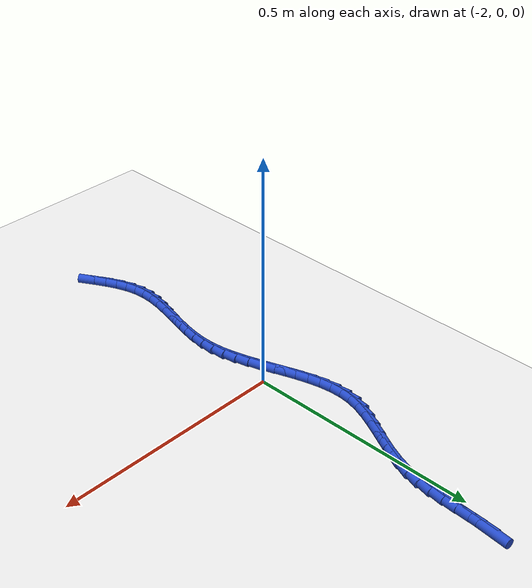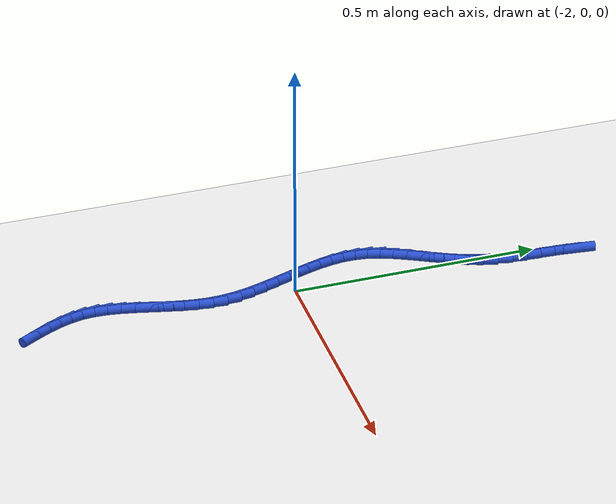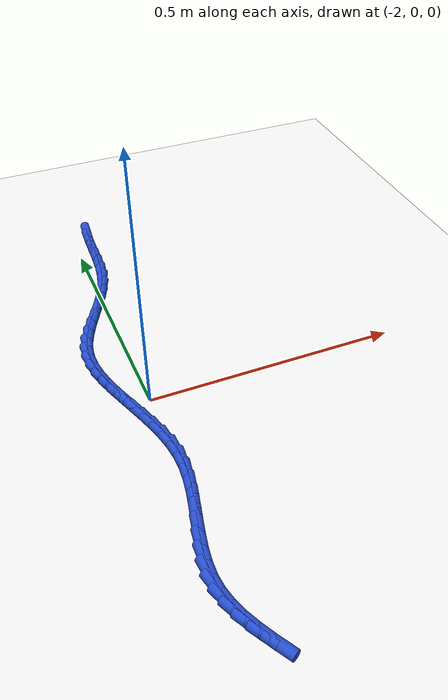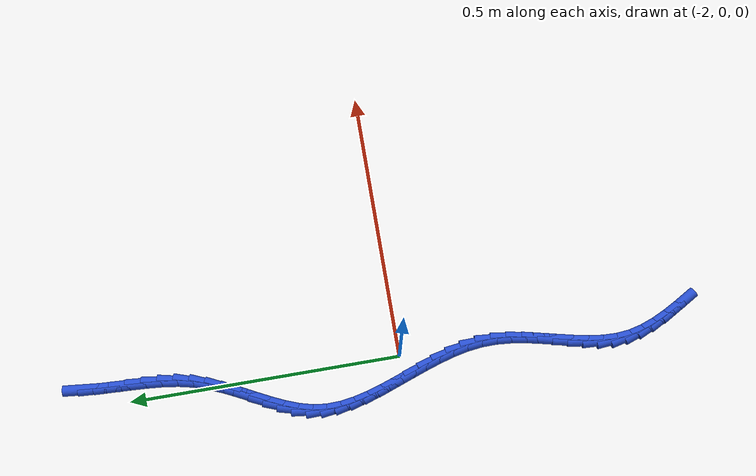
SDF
<sdf version="1.6">
 <world name="default">
  <model name="ground_plane">
   <static>1</static>
   <link name="link">
    <collision name="collision">
     <geometry><plane><normal>0 0 1</normal><size>100 100</size></plane></geometry>
     <surface><friction><ode><mu>100</mu><mu2>50</mu2></ode></friction></surface>
    </collision>
    <visual name="visual">
     <cast_shadows>0</cast_shadows>
     <geometry><plane><normal>0 0 1</normal><size>100 100</size></plane></geometry>
     <material>
      <script><uri>file://media/materials/scripts/gazebo.material</uri><name>Gazebo/WhiteGlow</name></script>
     </material>
    </visual>
   </link>
  </model>
  <model name="line">
   <link name="link_104">
    <pose>-1.9638460300956704 0.5771195783553625 0.01 0 1.57 1.4712938510846374</pose>
    <collision name="collision">
     <geometry><cylinder><radius>0.01</radius><length>0.08</length></cylinder></geometry>
    </collision>
    <visual name="visual">
     <material>
      <script><name>Gazebo/Blue</name><uri>file://media/materials/scripts/gazebo.material</uri></script>
     </material>
     <geometry><cylinder><radius>0.01</radius><length>0.08</length></cylinder></geometry>
    </visual>
   </link>
   <link name="link_105">
    <pose>-1.966580474179324 0.5497291666127777 0.01 0 1.57 1.511158272369347</pose>
    <collision name="collision">
     <geometry><cylinder><radius>0.01</radius><length>0.08</length></cylinder></geometry>
    </collision>
    <visual name="visual">
     <material>
      <script><name>Gazebo/Blue</name><uri>file://media/materials/scripts/gazebo.material</uri></script>
     </material>
     <geometry><cylinder><radius>0.01</radius><length>0.08</length></cylinder></geometry>
    </visual>
   </link>
   <link name="link_106">
    <pose>-1.9682664307233695 0.5214928789996873 0.01 0 1.57 1.5256882236570488</pose>
    <collision name="collision">
     <geometry><cylinder><radius>0.01</radius><length>0.08</length></cylinder></geometry>
    </collision>
    <visual name="visual">
     <material>
      <script><name>Gazebo/Blue</name><uri>file://media/materials/scripts/gazebo.material</uri></script>
     </material>
     <geometry><cylinder><radius>0.01</radius><length>0.08</length></cylinder></geometry>
    </visual>
   </link>
   <link name="link_107">
    <pose>-1.9695661513405653 0.49269896226086146 0.01 0 1.57 1.516631965013393</pose>
    <collision name="collision">
     <geometry><cylinder><radius>0.01</radius><length>0.08</length></cylinder></geometry>
    </collision>
    <visual name="visual">
     <material>
      <script><name>Gazebo/Blue</name><uri>file://media/materials/scripts/gazebo.material</uri></script>
     </material>
     <geometry><cylinder><radius>0.01</radius><length>0.08</length></cylinder></geometry>
    </visual>
   </link>
   <link name="link_108">
    <pose>-1.9711418876436715 0.46363566314106996 0.01 0 1.57 1.4844543727182367</pose>
    <collision name="collision">
     <geometry><cylinder><radius>0.01</radius><length>0.08</length></cylinder></geometry>
    </collision>
    <visual name="visual">
     <material>
      <script><name>Gazebo/Blue</name><uri>file://media/materials/scripts/gazebo.material</uri></script>
     </material>
     <geometry><cylinder><radius>0.01</radius><length>0.08</length></cylinder></geometry>
    </visual>
   </link>
   <link name="link_109">
    <pose>-1.973655891245446 0.43459122838508196 0.01 0 1.57 1.428585869701729</pose>
    <collision name="collision">
     <geometry><cylinder><radius>0.01</radius><length>0.08</length></cylinder></geometry>
    </collision>
    <visual name="visual">
     <material>
      <script><name>Gazebo/Blue</name><uri>file://media/materials/scripts/gazebo.material</uri></script>
     </material>
     <geometry><cylinder><radius>0.01</radius><length>0.08</length></cylinder></geometry>
    </visual>
   </link>
   <link name="link_110">
    <pose>-1.9777704137586498 0.4058539047376674 0.01 0 1.57 1.347948567414712</pose>
    <collision name="collision">
     <geometry><cylinder><radius>0.01</radius><length>0.08</length></cylinder></geometry>
    </collision>
    <visual name="visual">
     <material>
      <script><name>Gazebo/Blue</name><uri>file://media/materials/scripts/gazebo.material</uri></script>
     </material>
     <geometry><cylinder><radius>0.01</radius><length>0.08</length></cylinder></geometry>
    </visual>
   </link>
   <link name="link_111">
    <pose>-1.9841477067960416 0.377711938943596 0.01 0 1.57 1.2496712626826476</pose>
    <collision name="collision">
     <geometry><cylinder><radius>0.01</radius><length>0.08</length></cylinder></geometry>
    </collision>
    <visual name="visual">
     <material>
      <script><name>Gazebo/Blue</name><uri>file://media/materials/scripts/gazebo.material</uri></script>
     </material>
     <geometry><cylinder><radius>0.01</radius><length>0.08</length></cylinder></geometry>
    </visual>
   </link>
   <link name="link_112">
    <pose>-1.9932357253336646 0.3503909317823827 0.01 0 1.57 1.1701840110356312</pose>
    <collision name="collision">
     <geometry><cylinder><radius>0.01</radius><length>0.08</length></cylinder></geometry>
    </collision>
    <visual name="visual">
     <material>
      <script><name>Gazebo/Blue</name><uri>file://media/materials/scripts/gazebo.material</uri></script>
     </material>
     <geometry><cylinder><radius>0.01</radius><length>0.08</length></cylinder></geometry>
    </visual>
   </link>
   <link name="link_113">
    <pose>-2.0044866383874935 0.32382538299896113 0.01 0 1.57 1.1196474229728728</pose>
    <collision name="collision">
     <geometry><cylinder><radius>0.01</radius><length>0.08</length></cylinder></geometry>
    </collision>
    <visual name="visual">
     <material>
      <script><name>Gazebo/Blue</name><uri>file://media/materials/scripts/gazebo.material</uri></script>
     </material>
     <geometry><cylinder><radius>0.01</radius><length>0.08</length></cylinder></geometry>
    </visual>
   </link>
   <link name="link_114">
    <pose>-2.0170635928455916 0.2978653016506812 0.01 0 1.57 1.0973541623649388</pose>
    <collision name="collision">
     <geometry><cylinder><radius>0.01</radius><length>0.08</length></cylinder></geometry>
    </collision>
    <visual name="visual">
     <material>
      <script><name>Gazebo/Blue</name><uri>file://media/materials/scripts/gazebo.material</uri></script>
     </material>
     <geometry><cylinder><radius>0.01</radius><length>0.08</length></cylinder></geometry>
    </visual>
   </link>
   <link name="link_115">
    <pose>-2.0301297045751125 0.27236068772646027 0.01 0 1.57 1.1033839109279349</pose>
    <collision name="collision">
     <geometry><cylinder><radius>0.01</radius><length>0.08</length></cylinder></geometry>
    </collision>
    <visual name="visual">
     <material>
      <script><name>Gazebo/Blue</name><uri>file://media/materials/scripts/gazebo.material</uri></script>
     </material>
     <geometry><cylinder><radius>0.01</radius><length>0.08</length></cylinder></geometry>
    </visual>
   </link>
   <link name="link_116">
    <pose>-2.042848089443217 0.24716154121521614 0.01 0 1.57 1.139206784216069</pose>
    <collision name="collision">
     <geometry><cylinder><radius>0.01</radius><length>0.08</length></cylinder></geometry>
    </collision>
    <visual name="visual">
     <material>
      <script><name>Gazebo/Blue</name><uri>file://media/materials/scripts/gazebo.material</uri></script>
     </material>
     <geometry><cylinder><radius>0.01</radius><length>0.08</length></cylinder></geometry>
    </visual>
   </link>
   <link name="link_117">
    <pose>-2.054381863317059 0.22211786210586607 0.01 0 1.57 1.2077275535385854</pose>
    <collision name="collision">
     <geometry><cylinder><radius>0.01</radius><length>0.08</length></cylinder></geometry>
    </collision>
    <visual name="visual">
     <material>
      <script><name>Gazebo/Blue</name><uri>file://media/materials/scripts/gazebo.material</uri></script>
     </material>
     <geometry><cylinder><radius>0.01</radius><length>0.08</length></cylinder></geometry>
    </visual>
   </link>
   <link name="link_118">
    <pose>-2.063894142063797 0.19707965038732786 0.01 0 1.57 1.3124752953148382</pose>
    <collision name="collision">
     <geometry><cylinder><radius>0.01</radius><length>0.08</length></cylinder></geometry>
    </collision>
    <visual name="visual">
     <material>
      <script><name>Gazebo/Blue</name><uri>file://media/materials/scripts/gazebo.material</uri></script>
     </material>
     <geometry><cylinder><radius>0.01</radius><length>0.08</length></cylinder></geometry>
    </visual>
   </link>
   <link name="link_119">
    <pose>-2.070548041550588 0.17189690604851904 0.01 0 1.57 1.4531489398870898</pose>
    <collision name="collision">
     <geometry><cylinder><radius>0.01</radius><length>0.08</length></cylinder></geometry>
    </collision>
    <visual name="visual">
     <material>
      <script><name>Gazebo/Blue</name><uri>file://media/materials/scripts/gazebo.material</uri></script>
     </material>
     <geometry><cylinder><radius>0.01</radius><length>0.08</length></cylinder></geometry>
    </visual>
   </link>
   <link name="link_120">
    <pose>-2.0735585650393897 0.14642569691015217 0.01 0 1.57 -1.546108378441971</pose>
    <collision name="collision">
     <geometry><cylinder><radius>0.01</radius><length>0.08</length></cylinder></geometry>
    </collision>
    <visual name="visual">
     <material>
      <script><name>Gazebo/Blue</name><uri>file://media/materials/scripts/gazebo.material</uri></script>
     </material>
     <geometry><cylinder><radius>0.01</radius><length>0.08</length></cylinder></geometry>
    </visual>
   </link>
   <link name="link_121">
    <pose>-2.0729211819072044 0.12061336030310865 0.01 0 1.57 -1.4306521692753797</pose>
    <collision name="collision">
     <geometry><cylinder><radius>0.01</radius><length>0.08</length></cylinder></geometry>
    </collision>
    <visual name="visual">
     <material>
      <script><name>Gazebo/Blue</name><uri>file://media/materials/scripts/gazebo.material</uri></script>
     </material>
     <geometry><cylinder><radius>0.01</radius><length>0.08</length></cylinder></geometry>
    </visual>
   </link>
   <link name="link_122">
    <pose>-2.069234257889862 0.0944777376510083 0.01 0 1.57 -1.3432396800025814</pose>
    <collision name="collision">
     <geometry><cylinder><radius>0.01</radius><length>0.08</length></cylinder></geometry>
    </collision>
    <visual name="visual">
     <material>
      <script><name>Gazebo/Blue</name><uri>file://media/materials/scripts/gazebo.material</uri></script>
     </material>
     <geometry><cylinder><radius>0.01</radius><length>0.08</length></cylinder></geometry>
    </visual>
   </link>
   <link name="link_123">
    <pose>-2.0631117886306862 0.06803849817495393 0.01 0 1.57 -1.2818454118321496</pose>
    <collision name="collision">
     <geometry><cylinder><radius>0.01</radius><length>0.08</length></cylinder></geometry>
    </collision>
    <visual name="visual">
     <material>
      <script><name>Gazebo/Blue</name><uri>file://media/materials/scripts/gazebo.material</uri></script>
     </material>
     <geometry><cylinder><radius>0.01</radius><length>0.08</length></cylinder></geometry>
    </visual>
   </link>
   <link name="link_124">
    <pose>-2.0551677697729995 0.04131531109604834 0.01 0 1.57 -1.243860685171999</pose>
    <collision name="collision">
     <geometry><cylinder><radius>0.01</radius><length>0.08</length></cylinder></geometry>
    </collision>
    <visual name="visual">
     <material>
      <script><name>Gazebo/Blue</name><uri>file://media/materials/scripts/gazebo.material</uri></script>
     </material>
     <geometry><cylinder><radius>0.01</radius><length>0.08</length></cylinder></geometry>
    </visual>
   </link>
   <link name="link_125">
    <pose>-2.046016196960124 0.014327845635394331 0.01 0 1.57 -1.2271410408471115</pose>
    <collision name="collision">
     <geometry><cylinder><radius>0.01</radius><length>0.08</length></cylinder></geometry>
    </collision>
    <visual name="visual">
     <material>
      <script><name>Gazebo/Blue</name><uri>file://media/materials/scripts/gazebo.material</uri></script>
     </material>
     <geometry><cylinder><radius>0.01</radius><length>0.08</length></cylinder></geometry>
    </visual>
   </link>
   <link name="link_126">
    <pose>-2.036271065835383 -0.012904228985905427 0.01 0 1.57 -1.230403564304682</pose>
    <collision name="collision">
     <geometry><cylinder><radius>0.01</radius><length>0.08</length></cylinder></geometry>
    </collision>
    <visual name="visual">
     <material>
      <script><name>Gazebo/Blue</name><uri>file://media/materials/scripts/gazebo.material</uri></script>
     </material>
     <geometry><cylinder><radius>0.01</radius><length>0.08</length></cylinder></geometry>
    </visual>
   </link>
   <link name="link_127">
    <pose>-2.0265463720420995 -0.04036124354674803 0.01 0 1.57 -1.2532976482034097</pose>
    <collision name="collision">
     <geometry><cylinder><radius>0.01</radius><length>0.08</length></cylinder></geometry>
    </collision>
    <visual name="visual">
     <material>
      <script><name>Gazebo/Blue</name><uri>file://media/materials/scripts/gazebo.material</uri></script>
     </material>
     <geometry><cylinder><radius>0.01</radius><length>0.08</length></cylinder></geometry>
    </visual>
   </link>
   <link name="link_128">
    <pose>-2.0174561112235976 -0.06802352882603077 0.01 0 1.57 -1.296308976978884</pose>
    <collision name="collision">
     <geometry><cylinder><radius>0.01</radius><length>0.08</length></cylinder></geometry>
    </collision>
    <visual name="visual">
     <material>
      <script><name>Gazebo/Blue</name><uri>file://media/materials/scripts/gazebo.material</uri></script>
     </material>
     <geometry><cylinder><radius>0.01</radius><length>0.08</length></cylinder></geometry>
    </visual>
   </link>
   <link name="link_129">
    <pose>-2.009614279023198 -0.09587141560265083 0.01 0 1.57 -1.360506993724979</pose>
    <collision name="collision">
     <geometry><cylinder><radius>0.01</radius><length>0.08</length></cylinder></geometry>
    </collision>
    <visual name="visual">
     <material>
      <script><name>Gazebo/Blue</name><uri>file://media/materials/scripts/gazebo.material</uri></script>
     </material>
     <geometry><cylinder><radius>0.01</radius><length>0.08</length></cylinder></geometry>
    </visual>
   </link>
   <link name="link_130">
    <pose>-2.0036348710842247 -0.12388523465550548 0.01 0 1.57 -1.4470365575675261</pose>
    <collision name="collision">
     <geometry><cylinder><radius>0.01</radius><length>0.08</length></cylinder></geometry>
    </collision>
    <visual name="visual">
     <material>
      <script><name>Gazebo/Blue</name><uri>file://media/materials/scripts/gazebo.material</uri></script>
     </material>
     <geometry><cylinder><radius>0.01</radius><length>0.08</length></cylinder></geometry>
    </visual>
   </link>
   <link name="link_131">
    <pose>-2.00013188305 -0.1520453167634919 0.01 0 1.57 -1.5549697677408498</pose>
    <collision name="collision">
     <geometry><cylinder><radius>0.01</radius><length>0.08</length></cylinder></geometry>
    </collision>
    <visual name="visual">
     <material>
      <script><name>Gazebo/Blue</name><uri>file://media/materials/scripts/gazebo.material</uri></script>
     </material>
     <geometry><cylinder><radius>0.01</radius><length>0.08</length></cylinder></geometry>
    </visual>
   </link>
   <link name="link_132">
    <pose>-1.999684196265171 -0.18033001237030596 0.01 0 1.57 1.4833034061860875</pose>
    <collision name="collision">
     <geometry><cylinder><radius>0.01</radius><length>0.08</length></cylinder></geometry>
    </collision>
    <visual name="visual">
     <material>
      <script><name>Gazebo/Blue</name><uri>file://media/materials/scripts/gazebo.material</uri></script>
     </material>
     <geometry><cylinder><radius>0.01</radius><length>0.08</length></cylinder></geometry>
    </visual>
   </link>
   <link name="link_133">
    <pose>-2.002170810325301 -0.20867820080625848 0.01 0 1.57 1.407844559562056</pose>
    <collision name="collision">
     <geometry><cylinder><radius>0.01</radius><length>0.08</length></cylinder></geometry>
    </collision>
    <visual name="visual">
     <material>
      <script><name>Gazebo/Blue</name><uri>file://media/materials/scripts/gazebo.material</uri></script>
     </material>
     <geometry><cylinder><radius>0.01</radius><length>0.08</length></cylinder></geometry>
    </visual>
   </link>
   <link name="link_134">
    <pose>-2.006825934740469 -0.23699239728356872 0.01 0 1.57 1.359875746409483</pose>
    <collision name="collision">
     <geometry><cylinder><radius>0.01</radius><length>0.08</length></cylinder></geometry>
    </collision>
    <visual name="visual">
     <material>
      <script><name>Gazebo/Blue</name><uri>file://media/materials/scripts/gazebo.material</uri></script>
     </material>
     <geometry><cylinder><radius>0.01</radius><length>0.08</length></cylinder></geometry>
    </visual>
   </link>
   <link name="link_135">
    <pose>-2.0128597062772835 -0.2651737593879878 0.01 0 1.57 1.3381413737792751</pose>
    <collision name="collision">
     <geometry><cylinder><radius>0.01</radius><length>0.08</length></cylinder></geometry>
    </collision>
    <visual name="visual">
     <material>
      <script><name>Gazebo/Blue</name><uri>file://media/materials/scripts/gazebo.material</uri></script>
     </material>
     <geometry><cylinder><radius>0.01</radius><length>0.08</length></cylinder></geometry>
    </visual>
   </link>
   <link name="link_136">
    <pose>-2.019482261702358 -0.29312344470526747 0.01 0 1.57 1.342354159145554</pose>
    <collision name="collision">
     <geometry><cylinder><radius>0.01</radius><length>0.08</length></cylinder></geometry>
    </collision>
    <visual name="visual">
     <material>
      <script><name>Gazebo/Blue</name><uri>file://media/materials/scripts/gazebo.material</uri></script>
     </material>
     <geometry><cylinder><radius>0.01</radius><length>0.08</length></cylinder></geometry>
    </visual>
   </link>
   <link name="link_137">
    <pose>-2.025903737782302 -0.32074261082115896 0.01 0 1.57 1.373663442775397</pose>
    <collision name="collision">
     <geometry><cylinder><radius>0.01</radius><length>0.08</length></cylinder></geometry>
    </collision>
    <visual name="visual">
     <material>
      <script><name>Gazebo/Blue</name><uri>file://media/materials/scripts/gazebo.material</uri></script>
     </material>
     <geometry><cylinder><radius>0.01</radius><length>0.08</length></cylinder></geometry>
    </visual>
   </link>
   <link name="link_138">
    <pose>-2.0313342712837277 -0.3479324153214138 0.01 0 1.57 1.434751114136437</pose>
    <collision name="collision">
     <geometry><cylinder><radius>0.01</radius><length>0.08</length></cylinder></geometry>
    </collision>
    <visual name="visual">
     <material>
      <script><name>Gazebo/Blue</name><uri>file://media/materials/scripts/gazebo.material</uri></script>
     </material>
     <geometry><cylinder><radius>0.01</radius><length>0.08</length></cylinder></geometry>
    </visual>
   </link>
   <link name="link_139">
    <pose>-2.0349839989732454 -0.3745940157917832 0.01 0 1.57 1.5293728637403663</pose>
    <collision name="collision">
     <geometry><cylinder><radius>0.01</radius><length>0.08</length></cylinder></geometry>
    </collision>
    <visual name="visual">
     <material>
      <script><name>Gazebo/Blue</name><uri>file://media/materials/scripts/gazebo.material</uri></script>
     </material>
     <geometry><cylinder><radius>0.01</radius><length>0.08</length></cylinder></geometry>
    </visual>
   </link>
   <link name="link_140">
    <pose>-2.036063057617466 -0.40062856981801864 0.01 0 1.57 -1.4820746332458745</pose>
    <collision name="collision">
     <geometry><cylinder><radius>0.01</radius><length>0.08</length></cylinder></geometry>
    </collision>
    <visual name="visual">
     <material>
      <script><name>Gazebo/Blue</name><uri>file://media/materials/scripts/gazebo.material</uri></script>
     </material>
     <geometry><cylinder><radius>0.01</radius><length>0.08</length></cylinder></geometry>
    </visual>
   </link>
   <link name="link_141">
    <pose>-2.033810960501798 -0.42594576977056037 0.01 0 1.57 -1.3437198927481453</pose>
    <collision name="collision">
     <geometry><cylinder><radius>0.01</radius><length>0.08</length></cylinder></geometry>
    </collision>
    <visual name="visual">
     <material>
      <script><name>Gazebo/Blue</name><uri>file://media/materials/scripts/gazebo.material</uri></script>
     </material>
     <geometry><cylinder><radius>0.01</radius><length>0.08</length></cylinder></geometry>
    </visual>
   </link>
   <link name="link_142">
    <pose>-2.0281049367342807 -0.4506405841336165 0.01 0 1.57 -1.228860807883256</pose>
    <collision name="collision">
     <geometry><cylinder><radius>0.01</radius><length>0.08</length></cylinder></geometry>
    </collision>
    <visual name="visual">
     <material>
      <script><name>Gazebo/Blue</name><uri>file://media/materials/scripts/gazebo.material</uri></script>
     </material>
     <geometry><cylinder><radius>0.01</radius><length>0.08</length></cylinder></geometry>
    </visual>
   </link>
   <link name="link_143">
    <pose>-2.0194395374369947 -0.4749873324748186 0.01 0 1.57 -1.1418364631519202</pose>
    <collision name="collision">
     <geometry><cylinder><radius>0.01</radius><length>0.08</length></cylinder></geometry>
    </collision>
    <visual name="visual">
     <material>
      <script><name>Gazebo/Blue</name><uri>file://media/materials/scripts/gazebo.material</uri></script>
     </material>
     <geometry><cylinder><radius>0.01</radius><length>0.08</length></cylinder></geometry>
    </visual>
   </link>
   <link name="link_144">
    <pose>-2.0083346101383532 -0.49926768374798475 0.01 0 1.57 -1.0821024207064893</pose>
    <collision name="collision">
     <geometry><cylinder><radius>0.01</radius><length>0.08</length></cylinder></geometry>
    </collision>
    <visual name="visual">
     <material>
      <script><name>Gazebo/Blue</name><uri>file://media/materials/scripts/gazebo.material</uri></script>
     </material>
     <geometry><cylinder><radius>0.01</radius><length>0.08</length></cylinder></geometry>
    </visual>
   </link>
   <link name="link_145">
    <pose>-1.995310002366768 -0.5237633069069316 0.01 0 1.57 -1.0473482942322832</pose>
    <collision name="collision">
     <geometry><cylinder><radius>0.01</radius><length>0.08</length></cylinder></geometry>
    </collision>
    <visual name="visual">
     <material>
      <script><name>Gazebo/Blue</name><uri>file://media/materials/scripts/gazebo.material</uri></script>
     </material>
     <geometry><cylinder><radius>0.01</radius><length>0.08</length></cylinder></geometry>
    </visual>
   </link>
  </model>
 </world>
</sdf>
